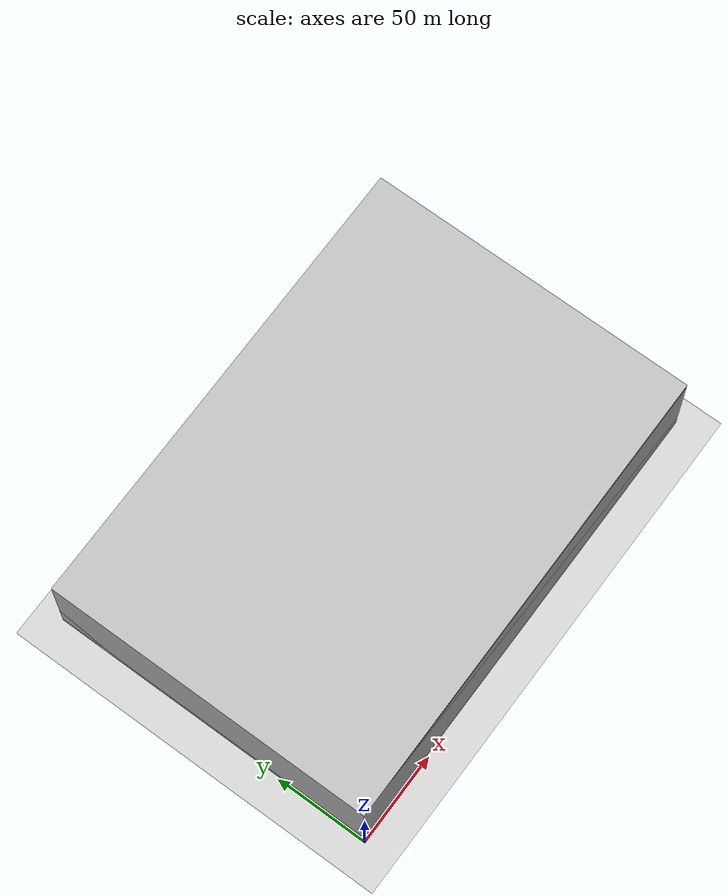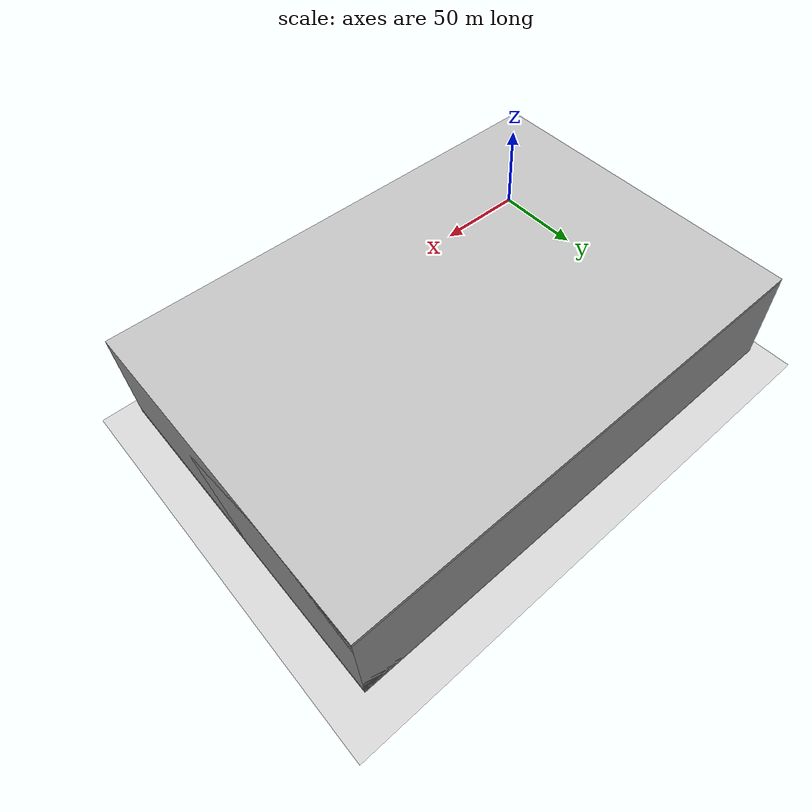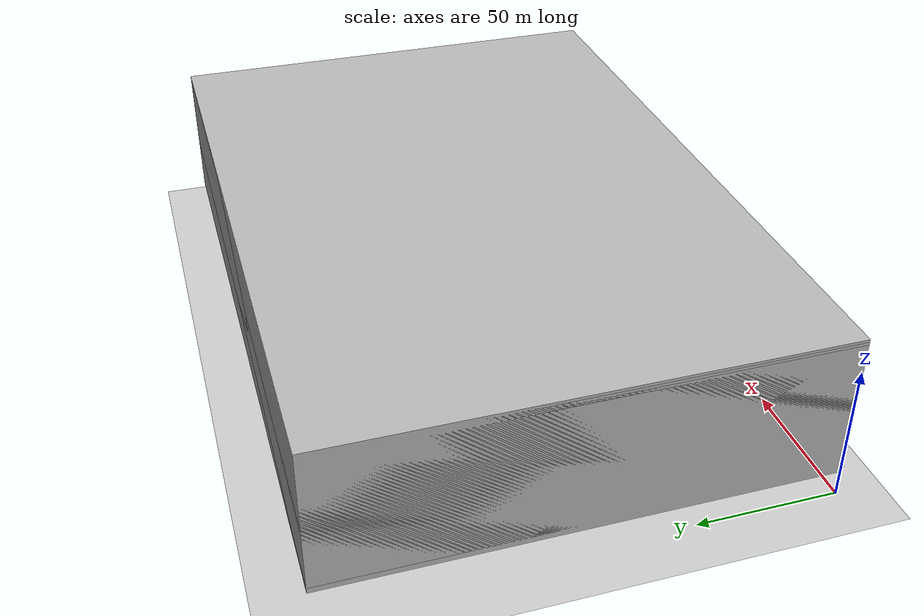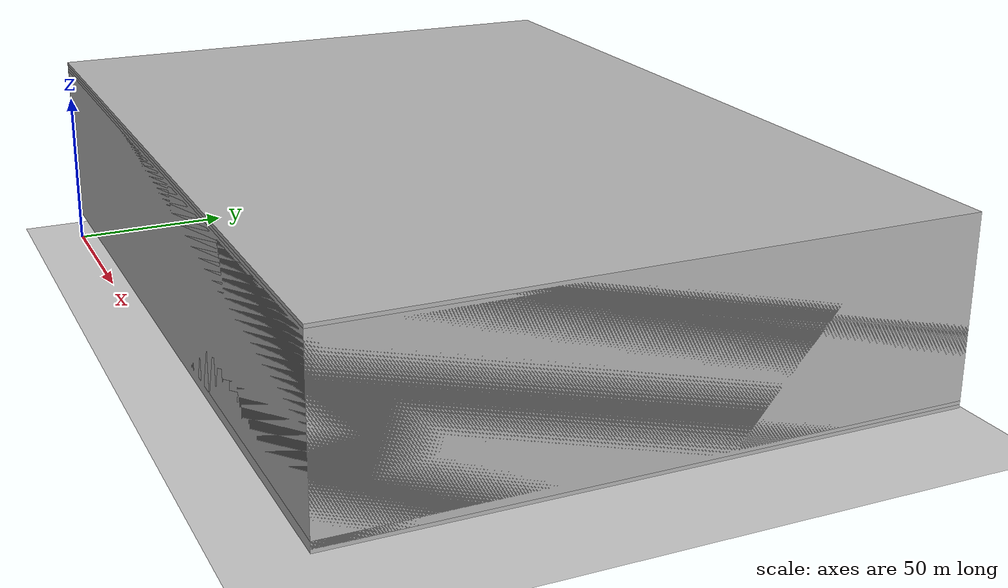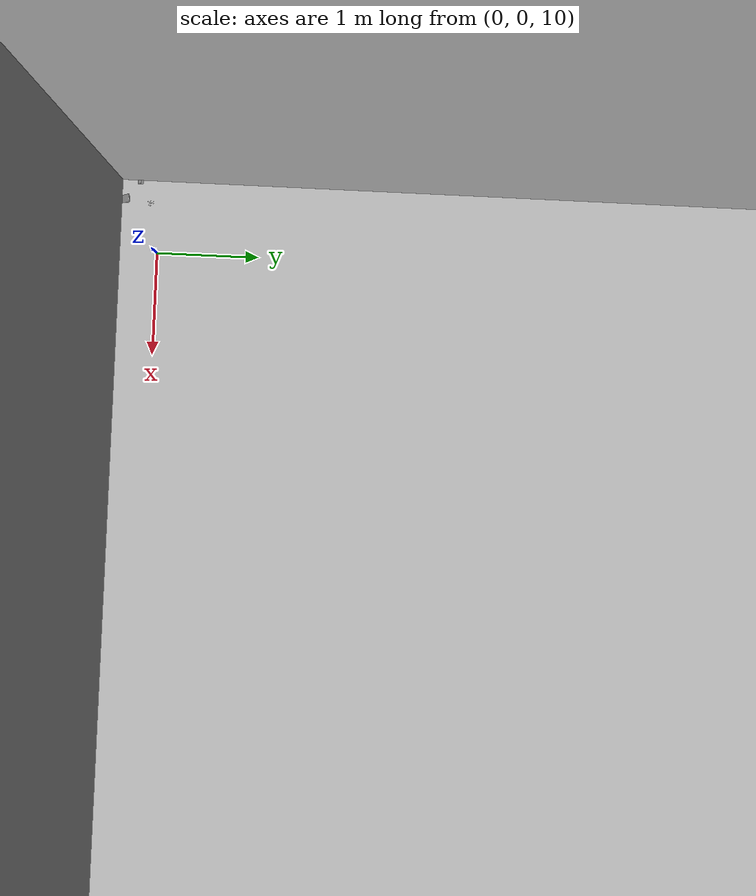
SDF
<sdf version="1.4">
 <world name="default">
  <include><uri>model://ground_plane</uri></include>
  <include><uri>model://sun</uri></include>
  <physics type="ode">
   <max_step_size>0.001</max_step_size>
   <real_time_factor>0.1</real_time_factor>
   <real_time_update_rate>1000</real_time_update_rate>
   <gravity>0 0 -9.8</gravity>
  </physics>
  <model name="lunchbox1">
   <pose>-0.5 -0.1625 10  0 0 0</pose>
   <static>false</static>
   <link name="lunchbox1">
    <inertial>
     <pose>8.6736E-18 0 -0.025 0 0 0</pose>
     <mass>0.535</mass>
     <inertia>
      <ixx>0.00371</ixx>
      <ixy>0.0</ixy>
      <ixz>0.0</ixz>
      <iyy>0.0021609</iyy>
      <iyz>0.0</iyz>
      <izz>0.0048427</izz>
     </inertia>
    </inertial>
    <collision name="collision">
     <geometry><mesh><uri>model://mobile_dual_arm/scene/meshes/lunchbox.STL</uri></mesh></geometry>
     <surface>
      <friction><ode><mu>0.5</mu><mu2>0.5</mu2></ode></friction>
      <contact><elastic_modulus>0.01</elastic_modulus></contact>
     </surface>
    </collision>
    <visual name="visual">
     <geometry><mesh><uri>model://mobile_dual_arm/scene/meshes/lunchbox.STL</uri></mesh></geometry>
    </visual>
   </link>
  </model>
  <model name="lunchbox2">
   <pose>-0.5 -0.1625 11  0 0 0</pose>
   <static>false</static>
   <link name="lunchbox2">
    <inertial>
     <pose>8.6736E-18 0 -0.025 0 0 0</pose>
     <mass>0.535</mass>
     <inertia>
      <ixx>0.00371</ixx>
      <ixy>0.0</ixy>
      <ixz>0.0</ixz>
      <iyy>0.0021609</iyy>
      <iyz>0.0</iyz>
      <izz>0.0048427</izz>
     </inertia>
    </inertial>
    <collision name="collision">
     <geometry><mesh><uri>model://mobile_dual_arm/scene/meshes/lunchbox.STL</uri></mesh></geometry>
     <surface>
      <friction><ode><mu>0.5</mu><mu2>0.5</mu2></ode></friction>
      <contact><elastic_modulus>0.01</elastic_modulus></contact>
     </surface>
    </collision>
    <visual name="visual">
     <geometry><mesh><uri>model://mobile_dual_arm/scene/meshes/lunchbox.STL</uri></mesh></geometry>
    </visual>
   </link>
  </model>
  <model name="lunchbox3">
   <pose>-0.5 -0.1625 12  0 0 0</pose>
   <static>false</static>
   <link name="lunchbox3">
    <inertial>
     <pose>8.6736E-18 0 -0.025 0 0 0</pose>
     <mass>0.535</mass>
     <inertia>
      <ixx>0.00371</ixx>
      <ixy>0.0</ixy>
      <ixz>0.0</ixz>
      <iyy>0.0021609</iyy>
      <iyz>0.0</iyz>
      <izz>0.0048427</izz>
     </inertia>
    </inertial>
    <collision name="collision">
     <geometry><mesh><uri>model://mobile_dual_arm/scene/meshes/lunchbox.STL</uri></mesh></geometry>
     <surface>
      <friction><ode><mu>0.5</mu><mu2>0.5</mu2></ode></friction>
      <contact><elastic_modulus>0.01</elastic_modulus></contact>
     </surface>
    </collision>
    <visual name="visual">
     <geometry><mesh><uri>model://mobile_dual_arm/scene/meshes/lunchbox.STL</uri></mesh></geometry>
    </visual>
   </link>
  </model>
  <model name="lunchbox4">
   <pose>-0.5 -0.1625 13  0 0 0</pose>
   <static>false</static>
   <link name="lunchbox4">
    <inertial>
     <pose>8.6736E-18 0 -0.025 0 0 0</pose>
     <mass>0.535</mass>
     <inertia>
      <ixx>0.00371</ixx>
      <ixy>0.0</ixy>
      <ixz>0.0</ixz>
      <iyy>0.0021609</iyy>
      <iyz>0.0</iyz>
      <izz>0.0048427</izz>
     </inertia>
    </inertial>
    <collision name="collision">
     <geometry><mesh><uri>model://mobile_dual_arm/scene/meshes/lunchbox.STL</uri></mesh></geometry>
     <surface>
      <friction><ode><mu>0.5</mu><mu2>0.5</mu2></ode></friction>
      <contact><elastic_modulus>0.01</elastic_modulus></contact>
     </surface>
    </collision>
    <visual name="visual">
     <geometry><mesh><uri>model://mobile_dual_arm/scene/meshes/lunchbox.STL</uri></mesh></geometry>
    </visual>
   </link>
  </model>
  <model name="riceball1">
   <pose>-0.5 0.0 10  0 0 0</pose>
   <static>false</static>
   <link name="riceball1">
    <inertial>
     <pose>0.0175 0 0.00014145 0 0 0</pose>
     <mass>0.11</mass>
     <inertia>
      <ixx>7.011E-05</ixx>
      <ixy>0.0</ixy>
      <ixz>2.7E-07</ixz>
      <iyy>8.42E-05</iyy>
      <iyz>0.0</iyz>
      <izz>7.871E-05</izz>
     </inertia>
    </inertial>
    <collision name="collision">
     <geometry><mesh><uri>model://mobile_dual_arm/scene/meshes/riceball.STL</uri></mesh></geometry>
     <surface>
      <friction><ode><mu>0.5</mu><mu2>0.5</mu2></ode></friction>
      <contact><elastic_modulus>0.01</elastic_modulus></contact>
     </surface>
    </collision>
    <visual name="visual">
     <geometry><mesh><uri>model://mobile_dual_arm/scene/meshes/riceball.STL</uri></mesh></geometry>
    </visual>
   </link>
  </model>
  <model name="riceball2">
   <pose>-0.5 0.0 11  0 0 0</pose>
   <static>false</static>
   <link name="riceball2">
    <inertial>
     <pose>0.0175 0 0.00014145 0 0 0</pose>
     <mass>0.11</mass>
     <inertia>
      <ixx>7.011E-05</ixx>
      <ixy>0.0</ixy>
      <ixz>2.7E-07</ixz>
      <iyy>8.42E-05</iyy>
      <iyz>0.0</iyz>
      <izz>7.871E-05</izz>
     </inertia>
    </inertial>
    <collision name="collision">
     <geometry><mesh><uri>model://mobile_dual_arm/scene/meshes/riceball.STL</uri></mesh></geometry>
     <surface>
      <friction><ode><mu>0.5</mu><mu2>0.5</mu2></ode></friction>
      <contact><elastic_modulus>0.01</elastic_modulus></contact>
     </surface>
    </collision>
    <visual name="visual">
     <geometry><mesh><uri>model://mobile_dual_arm/scene/meshes/riceball.STL</uri></mesh></geometry>
    </visual>
   </link>
  </model>
  <model name="riceball3">
   <pose>-0.5 0.0 12  0 0 0</pose>
   <static>false</static>
   <link name="riceball3">
    <inertial>
     <pose>0.0175 0 0.00014145 0 0 0</pose>
     <mass>0.11</mass>
     <inertia>
      <ixx>7.011E-05</ixx>
      <ixy>0.0</ixy>
      <ixz>2.7E-07</ixz>
      <iyy>8.42E-05</iyy>
      <iyz>0.0</iyz>
      <izz>7.871E-05</izz>
     </inertia>
    </inertial>
    <collision name="collision">
     <geometry><mesh><uri>model://mobile_dual_arm/scene/meshes/riceball.STL</uri></mesh></geometry>
     <surface>
      <friction><ode><mu>0.5</mu><mu2>0.5</mu2></ode></friction>
      <contact><elastic_modulus>0.01</elastic_modulus></contact>
     </surface>
    </collision>
    <visual name="visual">
     <geometry><mesh><uri>model://mobile_dual_arm/scene/meshes/riceball.STL</uri></mesh></geometry>
    </visual>
   </link>
  </model>
  <model name="riceball4">
   <pose>-0.5 0.0 13  0 0 0</pose>
   <static>false</static>
   <link name="riceball4">
    <inertial>
     <pose>0.0175 0 0.00014145 0 0 0</pose>
     <mass>0.11</mass>
     <inertia>
      <ixx>7.011E-05</ixx>
      <ixy>0.0</ixy>
      <ixz>2.7E-07</ixz>
      <iyy>8.42E-05</iyy>
      <iyz>0.0</iyz>
      <izz>7.871E-05</izz>
     </inertia>
    </inertial>
    <collision name="collision">
     <geometry><mesh><uri>model://mobile_dual_arm/scene/meshes/riceball.STL</uri></mesh></geometry>
     <surface>
      <friction><ode><mu>0.5</mu><mu2>0.5</mu2></ode></friction>
      <contact><elastic_modulus>0.01</elastic_modulus></contact>
     </surface>
    </collision>
    <visual name="visual">
     <geometry><mesh><uri>model://mobile_dual_arm/scene/meshes/riceball.STL</uri></mesh></geometry>
    </visual>
   </link>
  </model>
  <model name="drink1">
   <pose>-0.3 0.1 10  0 0 0</pose>
   <static>false</static>
   <link name="drink1">
    <inertial>
     <pose>0 -0.0019956 -0.050688 0 0 0</pose>
     <mass>0.26</mass>
     <inertia>
      <ixx>0.00109</ixx>
      <ixy>0.0</ixy>
      <ixz>0</ixz>
      <iyy>0.0010888</iyy>
      <iyz>2.589E-05</iyz>
      <izz>0.00027699</izz>
     </inertia>
    </inertial>
    <collision name="collision">
     <geometry><mesh><uri>model://mobile_dual_arm/scene/meshes/drink.STL</uri></mesh></geometry>
     <surface>
      <friction><ode><mu>0.5</mu><mu2>0.5</mu2></ode></friction>
      <contact><elastic_modulus>0.01</elastic_modulus></contact>
     </surface>
    </collision>
    <visual name="visual">
     <geometry><mesh><uri>model://mobile_dual_arm/scene/meshes/drink.STL</uri></mesh></geometry>
    </visual>
   </link>
  </model>
  <model name="drink2">
   <pose>-0.3 0.1 11  0 0 0</pose>
   <static>false</static>
   <link name="drink2">
    <inertial>
     <pose>0 -0.0019956 -0.050688 0 0 0</pose>
     <mass>0.26</mass>
     <inertia>
      <ixx>0.00109</ixx>
      <ixy>0.0</ixy>
      <ixz>0</ixz>
      <iyy>0.0010888</iyy>
      <iyz>2.589E-05</iyz>
      <izz>0.00027699</izz>
     </inertia>
    </inertial>
    <collision name="collision">
     <geometry><mesh><uri>model://mobile_dual_arm/scene/meshes/drink.STL</uri></mesh></geometry>
     <surface>
      <friction><ode><mu>0.5</mu><mu2>0.5</mu2></ode></friction>
      <contact><elastic_modulus>0.01</elastic_modulus></contact>
     </surface>
    </collision>
    <visual name="visual">
     <geometry><mesh><uri>model://mobile_dual_arm/scene/meshes/drink.STL</uri></mesh></geometry>
    </visual>
   </link>
  </model>
  <model name="drink3">
   <pose>-0.3 0.1 12  0 0 0</pose>
   <static>false</static>
   <link name="drink3">
    <inertial>
     <pose>0 -0.0019956 -0.050688 0 0 0</pose>
     <mass>0.26</mass>
     <inertia>
      <ixx>0.00109</ixx>
      <ixy>0.0</ixy>
      <ixz>0</ixz>
      <iyy>0.0010888</iyy>
      <iyz>2.589E-05</iyz>
      <izz>0.00027699</izz>
     </inertia>
    </inertial>
    <collision name="collision">
     <geometry><mesh><uri>model://mobile_dual_arm/scene/meshes/drink.STL</uri></mesh></geometry>
     <surface>
      <friction><ode><mu>0.5</mu><mu2>0.5</mu2></ode></friction>
      <contact><elastic_modulus>0.01</elastic_modulus></contact>
     </surface>
    </collision>
    <visual name="visual">
     <geometry><mesh><uri>model://mobile_dual_arm/scene/meshes/drink.STL</uri></mesh></geometry>
    </visual>
   </link>
  </model>
  <model name="drink4">
   <pose>-0.3 0.1 13  0 0 0</pose>
   <static>false</static>
   <link name="drink4">
    <inertial>
     <pose>0 -0.0019956 -0.050688 0 0 0</pose>
     <mass>0.26</mass>
     <inertia>
      <ixx>0.00109</ixx>
      <ixy>0.0</ixy>
      <ixz>0</ixz>
      <iyy>0.0010888</iyy>
      <iyz>2.589E-05</iyz>
      <izz>0.00027699</izz>
     </inertia>
    </inertial>
    <collision name="collision">
     <geometry><mesh><uri>model://mobile_dual_arm/scene/meshes/drink.STL</uri></mesh></geometry>
     <surface>
      <friction><ode><mu>0.5</mu><mu2>0.5</mu2></ode></friction>
      <contact><elastic_modulus>0.01</elastic_modulus></contact>
     </surface>
    </collision>
    <visual name="visual">
     <geometry><mesh><uri>model://mobile_dual_arm/scene/meshes/drink.STL</uri></mesh></geometry>
    </visual>
   </link>
  </model>
 </world>
</sdf>
